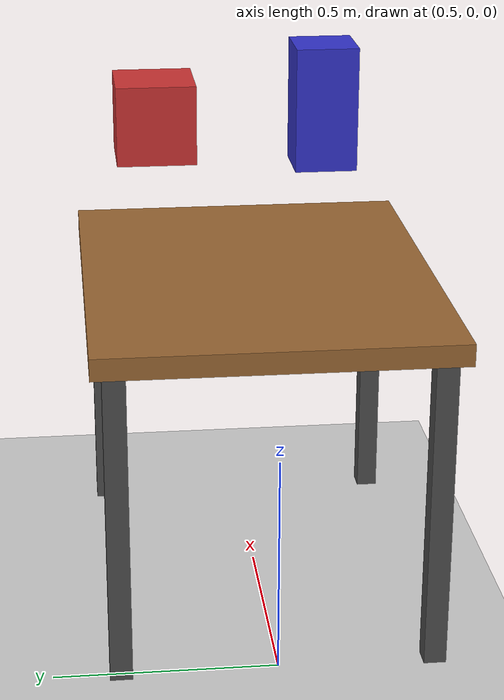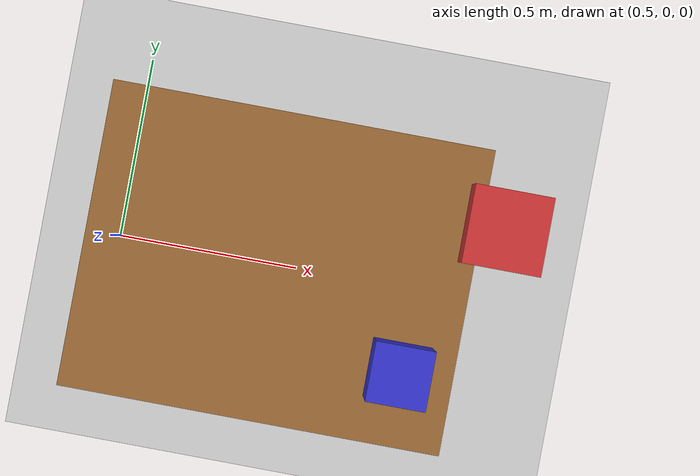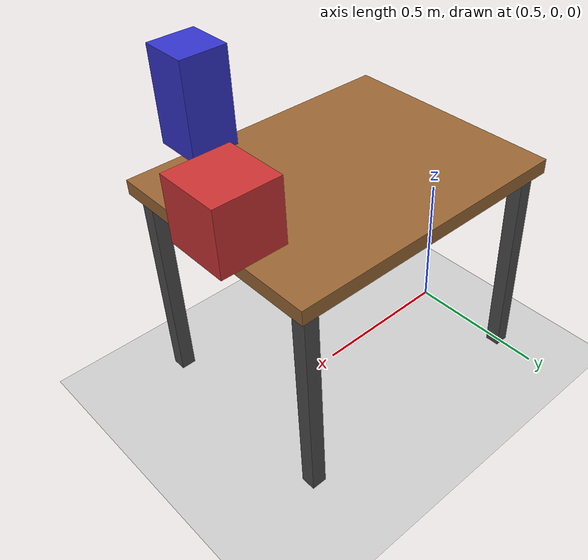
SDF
<?xml version="1.0" ?>
<sdf version="1.5">
  <world name="box">
    <gravity>0 0 -9.8</gravity>

    <!-- Physics engine -->
    <physics default="1" name="default_physics" type="dart">
      <real_time_update_rate>1000.0</real_time_update_rate>
      <bullet>
        <solver>
          <iters>50</iters>
          <min_step_size>0.0001</min_step_size>
          <sor>1.3</sor>
          <type>quick</type>
        </solver>
        <constraints>
          <contact_surface_layer>0.001</contact_surface_layer>
          <cfm>0.0</cfm>
          <erp>0.2</erp>
          <split_impulse>1</split_impulse>
          <split_impulse_penetration_threshold>-0.01</split_impulse_penetration_threshold>
        </constraints>
      </bullet>
      <max_contacts>20</max_contacts>
      <max_step_size>0.001</max_step_size>
      <real_time_factor>1.0</real_time_factor>
    </physics>

    <!-- Global light source -->
    <include>
      <uri>model://sun</uri>
    </include>

    <!-- Ground plane -->
    <include>
      <uri>model://ground_plane</uri>
    </include>

    <model name="table">
      <pose>0.95 0 0 0 0 0</pose>
      <static>true</static>
      <link name="link">
        <inertial>
          <mass>10.0</mass>
          <inertia>
            <ixx>2.0</ixx>
            <iyy>2.0</iyy>
            <izz>2.0</izz>
          </inertia>
        </inertial>
        <collision name="table_top_collision">
          <pose>0 0 0.75 0 0 0</pose>
          <geometry>
            <box>
              <size>1.0 0.8 0.05</size>
            </box>
          </geometry>
        </collision>
        <visual name="table_top_visual">
          <pose>0 0 0.75 0 0 0</pose>
          <geometry>
            <box>
              <size>1.0 0.8 0.05</size>
            </box>
          </geometry>
          <material>
            <ambient>0.6 0.4 0.2 1</ambient>
            <diffuse>0.6 0.4 0.2 1</diffuse>
          </material>
        </visual>

        <!-- Table legs -->
        <collision name="leg1_collision">
          <pose>0.45 0.35 0.375 0 0 0</pose>
          <geometry>
            <box>
              <size>0.05 0.05 0.75</size>
            </box>
          </geometry>
        </collision>
        <visual name="leg1_visual">
          <pose>0.45 0.35 0.375 0 0 0</pose>
          <geometry>
            <box>
              <size>0.05 0.05 0.75</size>
            </box>
          </geometry>
          <material>
            <ambient>0.3 0.3 0.3 1</ambient>
            <diffuse>0.3 0.3 0.3 1</diffuse>
          </material>
        </visual>

        <collision name="leg2_collision">
          <pose>-0.45 0.35 0.375 0 0 0</pose>
          <geometry>
            <box>
              <size>0.05 0.05 0.75</size>
            </box>
          </geometry>
        </collision>
        <visual name="leg2_visual">
          <pose>-0.45 0.35 0.375 0 0 0</pose>
          <geometry>
            <box>
              <size>0.05 0.05 0.75</size>
            </box>
          </geometry>
          <material>
            <ambient>0.3 0.3 0.3 1</ambient>
            <diffuse>0.3 0.3 0.3 1</diffuse>
          </material>
        </visual>

        <collision name="leg3_collision">
          <pose>0.45 -0.35 0.375 0 0 0</pose>
          <geometry>
            <box>
              <size>0.05 0.05 0.75</size>
            </box>
          </geometry>
        </collision>
        <visual name="leg3_visual">
          <pose>0.45 -0.35 0.375 0 0 0</pose>
          <geometry>
            <box>
              <size>0.05 0.05 0.75</size>
            </box>
          </geometry>
          <material>
            <ambient>0.3 0.3 0.3 1</ambient>
            <diffuse>0.3 0.3 0.3 1</diffuse>
          </material>
        </visual>

        <collision name="leg4_collision">
          <pose>-0.45 -0.35 0.375 0 0 0</pose>
          <geometry>
            <box>
              <size>0.05 0.05 0.75</size>
            </box>
          </geometry>
        </collision>
        <visual name="leg4_visual">
          <pose>-0.45 -0.35 0.375 0 0 0</pose>
          <geometry>
            <box>
              <size>0.05 0.05 0.75</size>
            </box>
          </geometry>
          <material>
            <ambient>0.3 0.3 0.3 1</ambient>
            <diffuse>0.3 0.3 0.3 1</diffuse>
          </material>
        </visual>
      </link>
    </model>

    <!-- Box on table -->
    <model name="box_on_table">
      <pose>1.5 0.2 1.0 0 0 0</pose> <!-- Sitting on table -->
      <static>false</static>
      <link name="link">
        <inertial>
          <mass>1.0</mass>
          <inertia>
            <ixx>0.016667</ixx>
            <iyy>0.016667</iyy>
            <izz>0.016667</izz>
          </inertia>
        </inertial>
        <collision name="collision">
          <geometry>
            <box>
              <size>0.2 0.2 0.2</size>
            </box>
          </geometry>
        </collision>
        <visual name="visual">
          <geometry>
            <box>
              <size>0.2 0.2 0.2</size>
            </box>
          </geometry>
          <material>
            <ambient>0.8 0.2 0.2 1</ambient>
            <diffuse>0.8 0.2 0.2 1</diffuse>
          </material>
        </visual>
      </link>
    </model>

    <!-- Tall box on table -->
    <model name="tall_box_on_table">
      <pose>1.3 -0.2 1.075 0 0 0</pose> <!-- Sitting on table -->
      <static>false</static>
      <link name="link">
        <inertial>
          <mass>2.0</mass>
          <inertia>
            <ixx>0.0225</ixx>
            <iyy>0.0225</iyy>
            <izz>0.005625</izz>
          </inertia>
        </inertial>
        <collision name="collision">
          <geometry>
            <box>
              <size>0.15 0.15 0.3</size>
            </box>
          </geometry>
        </collision>
        <visual name="visual">
          <geometry>
            <box>
              <size>0.15 0.15 0.3</size>
            </box>
          </geometry>
          <material>
            <ambient>0.2 0.2 0.8 1</ambient>
            <diffuse>0.2 0.2 0.8 1</diffuse>
          </material>
        </visual>
      </link>
    </model>
  </world>
</sdf>
